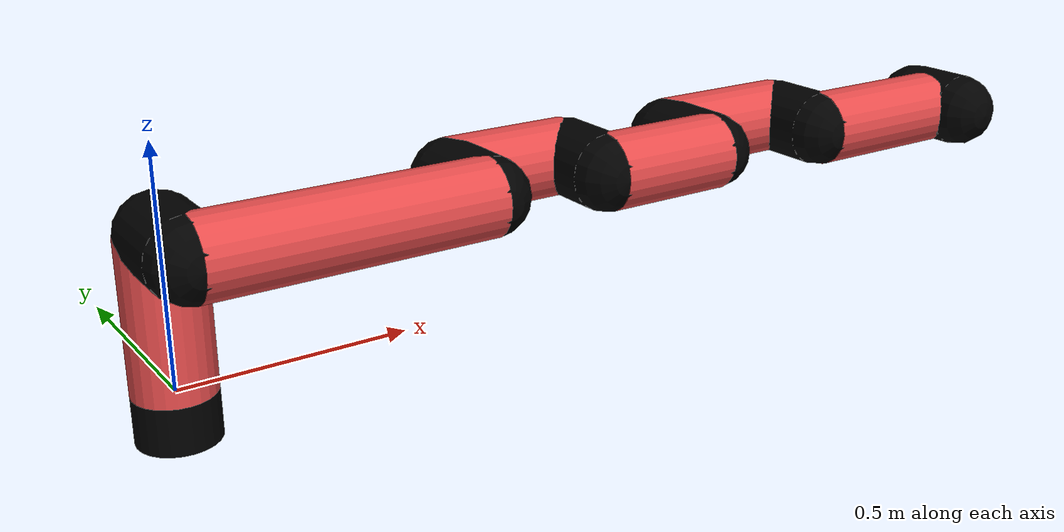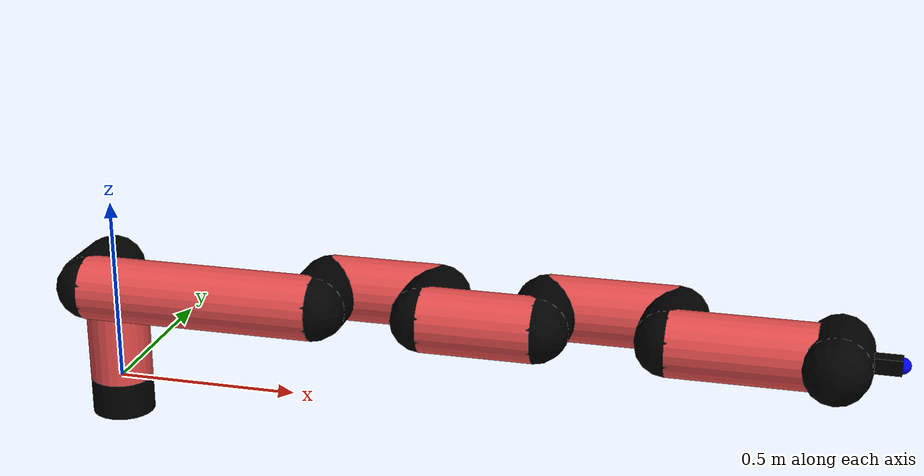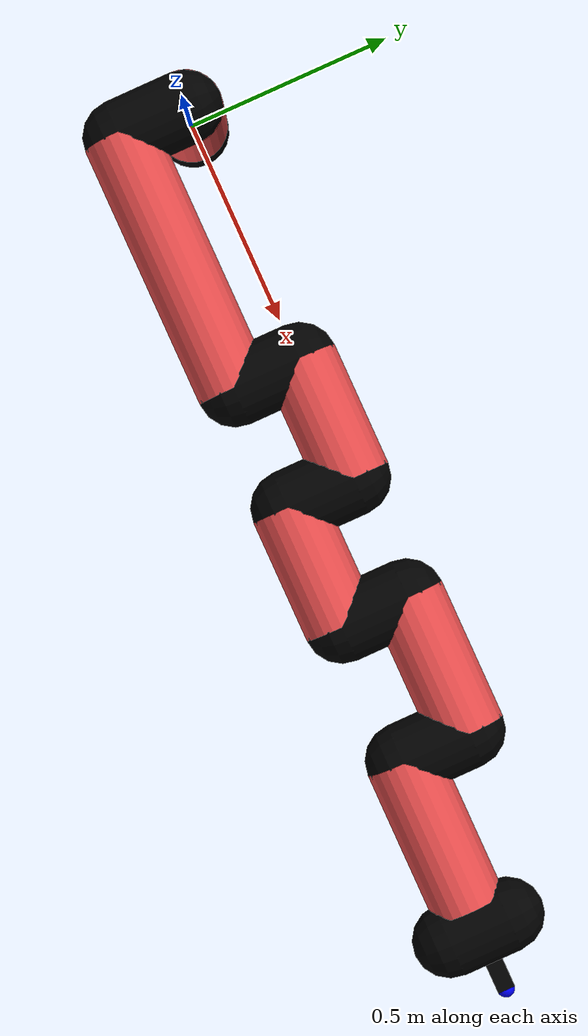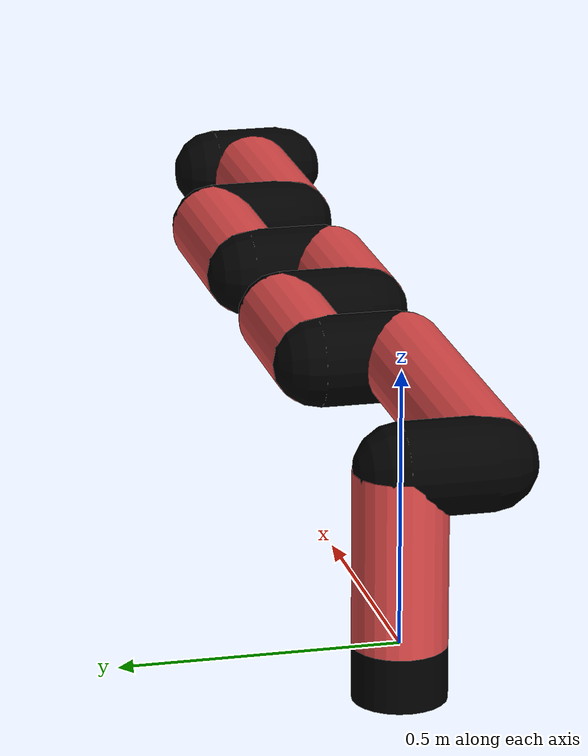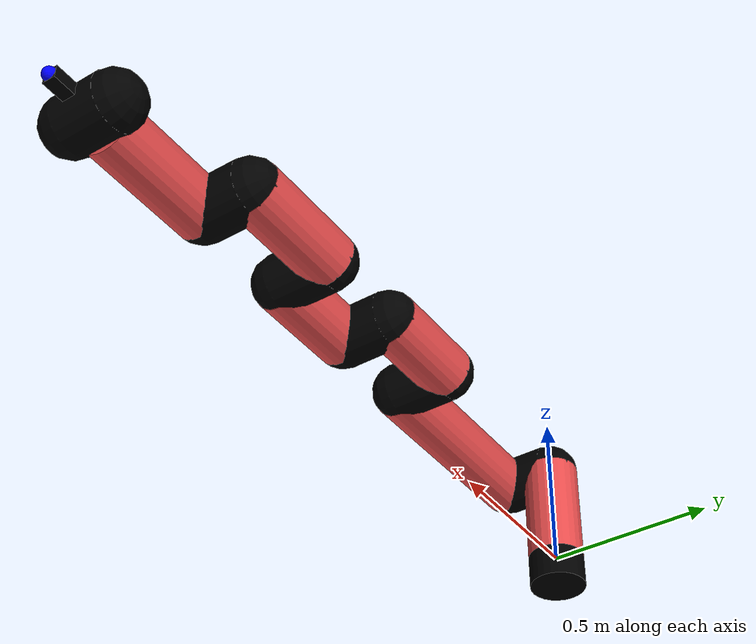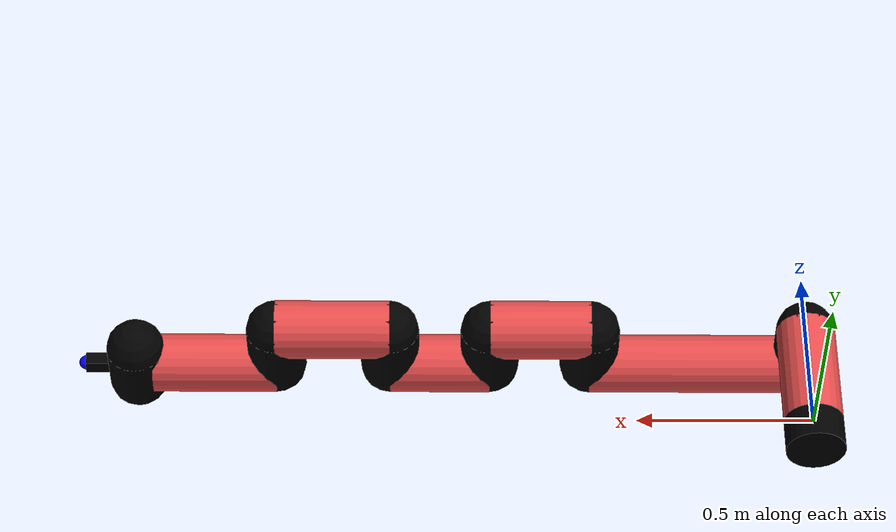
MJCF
<mujoco model="manipulator">
		<compiler angle="degree" coordinate="local" inertiafromgeom="auto" meshdir="meshes/"/>
		<option gravity="0 0 0" integrator="RK4" iterations="30" timestep="0.01"/>

		<default>
		<joint armature="1" limited="true" stiffness="10" damping="15" frictionloss="5.0"/>
		<geom conaffinity="1" condim="3" contype="1" friction=".5 .1 .1" margin="0.002"/>
		<motor ctrllimited="true"/>
		<position ctrllimited="true"/>
		</default>

		<asset>
		<texture builtin="gradient" height="100" rgb1="1.0 1.0 1.0" rgb2="1.0 1.0 1.0" type="skybox" width="100"/>
		<texture builtin="flat" height="32" name="arm_tex" rgb1="0.9 0.3 0.3" type="2d" width="32"/>
		<texture builtin="flat" height="32" name="gripper_tex" rgb1="0.0 0.0 0.0" type="cube" width="32"/>

		<material name="arm_mat" shininess="0.1" specular="0.1" texture="arm_tex"/>
		<material name="gripper_mat" shininess="1" specular="1" texture="gripper_tex"/>
		</asset>

		<worldbody>
		<light cutoff="45" diffuse=".8 .8 .8" dir="0 0.16 -1" directional="false" name="light" pos="0 -2.0 8.0" specular="0.3 0.3 0.3"/>

		<body name="base_link" pos="0 0 -0.1">
		<geom fromto="0 0 0 0 0 0.1" material="arm_mat" name="base_link" rgba="0.0 0.0 0.0 1" size="0.085" type="cylinder"/>
		</body>

		<body name="l1" pos="0 0 0">
<geom fromto="0 0 0 0 0 0.32" material="arm_mat" name="l1" rgba="0.9 0.3 0.3 1" size="0.085" type="cylinder"/>
<geom fromto="0 0 0.32 0 -0.16 0.32" material="arm_mat" name="l1_ex" rgba="0.0 0.0 0.0 1" size="0.085" type="capsule"/>
<joint axis="0 0 1" name="j1" pos="0 0 0" range="-90 90" damping="26.18" frictionloss="12.07"/>

<body name="l2" pos="0 -0.16 0.32">
<geom fromto="0 0 0 0.62 0 0" material="arm_mat" name="l2" rgba="0.9 0.3 0.3 1" size="0.085" type="cylinder"/>
<geom fromto="0.62 0 0 0.62 0.16 0" material="arm_mat" name="l2_ex" rgba="0.0 0.0 0.0 1" size="0.085" type="capsule"/>
<joint axis="0.0 1.0 0.0" name="j2" pos="0 0 0" range="-90 60" damping="25.72" frictionloss="8.98"/>

<body name="l3" pos="0.62 0.16 0">
<geom fromto="0 0 0 0.29 0 0" material="arm_mat" name="l3" rgba="0.9 0.3 0.3 1" size="0.085" type="cylinder"/>
<geom fromto="0.29 0 0 0.29 -0.16 0" material="arm_mat" name="l3_ex" rgba="0.0 0.0 0.0 1" size="0.085" type="capsule"/>
<joint axis="0.0 1.0 0.0" name="j3" pos="0 0 0" range="-30 60" damping="30.87" frictionloss="11.07"/>

<body name="l4" pos="0.29 -0.16 0">
<geom fromto="0 0 0 0.29 0 0" material="arm_mat" name="l4" rgba="0.9 0.3 0.3 1" size="0.085" type="cylinder"/>
<geom fromto="0.29 0 0 0.29 0.16 0" material="arm_mat" name="l4_ex" rgba="0.0 0.0 0.0 1" size="0.085" type="capsule"/>
<joint axis="0.0 1.0 0.0" name="j4" pos="0 0 0" range="-30 60" damping="23.75" frictionloss="7.65"/>

<body name="l5" pos="0.29 0.16 0">
<geom fromto="0 0 0 0.33 0 0" material="arm_mat" name="l5" rgba="0.9 0.3 0.3 1" size="0.085" type="cylinder"/>
<geom fromto="0.33 0 0 0.33 -0.16 0" material="arm_mat" name="l5_ex" rgba="0.0 0.0 0.0 1" size="0.085" type="capsule"/>
<joint axis="0.0 1.0 0.0" name="j5" pos="0 0 0" range="-30 60" damping="31.83" frictionloss="8.52"/>

<body name="l6" pos="0.33 -0.16 0">
<geom fromto="0 0 0 0.36 0 0" material="arm_mat" name="l6" rgba="0.9 0.3 0.3 1" size="0.085" type="cylinder"/>
<joint axis="0.0 1.0 0.0" name="j6" pos="0 0 0" range="-30 60" damping="37.41" frictionloss="10.71"/>

<body name="gripper" pos="0.36 0 0">
<geom fromto="0.05 -0.07 0 0.05 0.07 0" material="gripper_mat" name="gripper" rgba="0.0 0.0 0.0 1" size="0.085" type="capsule"/><joint axis="1 0 0" name="j7" pos="0 0 0" range="-90 90" damping="15" frictionloss="5.0"/><body name="finger" pos="0.1 0 0">
<geom fromto="0 0.0 0 0.1 0.0 0" material="gripper_mat" name="finger" rgba="0.0 0.0 0.0 1" size="0.020 0.06 0.06" type="box"/>
</body>
<site name="current" pos="0.2 0. 0.0" rgba="0. 0. 1.0 1" size="0.02" type="sphere"/>
</body>
</body>
</body>
</body>
</body>
</body>
</body>
</worldbody>
<actuator>
<motor ctrllimited="true" ctrlrange="-1.0 1.0" joint="j1" gear="97.8"/>
<motor ctrllimited="true" ctrlrange="-1.0 1.0" joint="j2" gear="94.49"/>
<motor ctrllimited="true" ctrlrange="-1.0 1.0" joint="j3" gear="68.42"/>
<motor ctrllimited="true" ctrlrange="-1.0 1.0" joint="j4" gear="98.73"/>
<motor ctrllimited="true" ctrlrange="-1.0 1.0" joint="j5" gear="71.81"/>
<motor ctrllimited="true" ctrlrange="-1.0 1.0" joint="j6" gear="96.94"/>
<motor ctrllimited="true" ctrlrange="-1.0 1.0" joint="j7" gear="80"/>
</actuator>
</mujoco>
